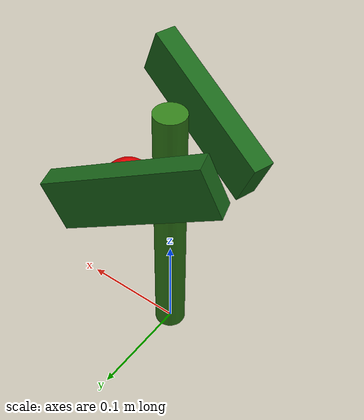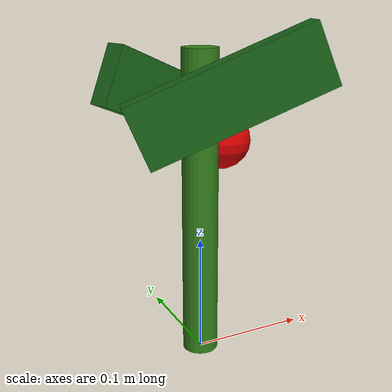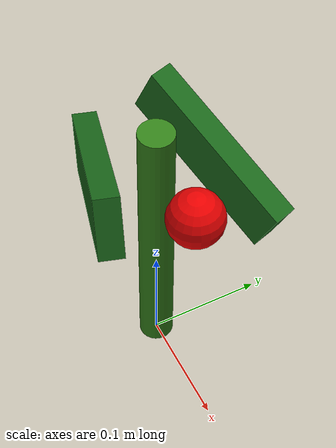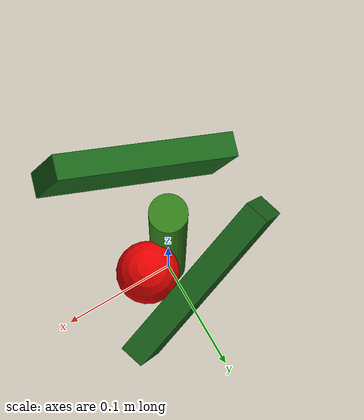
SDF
<?xml version="1.0"?>
<sdf version="1.9">
  <model name="crop_seedling">
    <static>true</static>
    <link name="stem">
      <pose>0 0 0.13 0 0 0</pose>
      <collision name="stem_collision">
        <geometry><cylinder><radius>0.015</radius><length>0.26</length></cylinder></geometry>
      </collision>
      <visual name="stem_visual">
        <geometry><cylinder><radius>0.015</radius><length>0.26</length></cylinder></geometry>
        <material><ambient>0.2 0.5 0.1 1</ambient><diffuse>0.2 0.5 0.1 1</diffuse></material>
      </visual>

      <visual name="leaf_01">
        <pose>0.0 0.05 0.08 0.0 0.4 0.3</pose>
        <geometry><box><size>0.15 0.02 0.05</size></box></geometry>
        <material><ambient>0.1 0.4 0.1 1</ambient><diffuse>0.1 0.4 0.1 1</diffuse></material>
      </visual>

      <visual name="leaf_02">
        <pose>0.0 -0.05 0.10 0.0 -0.4 -0.3</pose>
        <geometry><box><size>0.15 0.02 0.05</size></box></geometry>
        <material><ambient>0.1 0.4 0.1 1</ambient><diffuse>0.1 0.4 0.1 1</diffuse></material>
      </visual>

      <collision name="fruit_collision">
        <pose>0.03 0.02 0.05 0 0 0</pose>
        <geometry><sphere><radius>0.025</radius></sphere></geometry>
      </collision>
      <visual name="fruit_visual">
        <pose>0.03 0.02 0.05 0 0 0</pose>
        <geometry><sphere><radius>0.025</radius></sphere></geometry>
        <material>
          <ambient>0.8 0.0 0.0 1</ambient> <diffuse>0.9 0.0 0.0 1</diffuse>
        </material>
      </visual>
    </link>
  </model>
</sdf>
